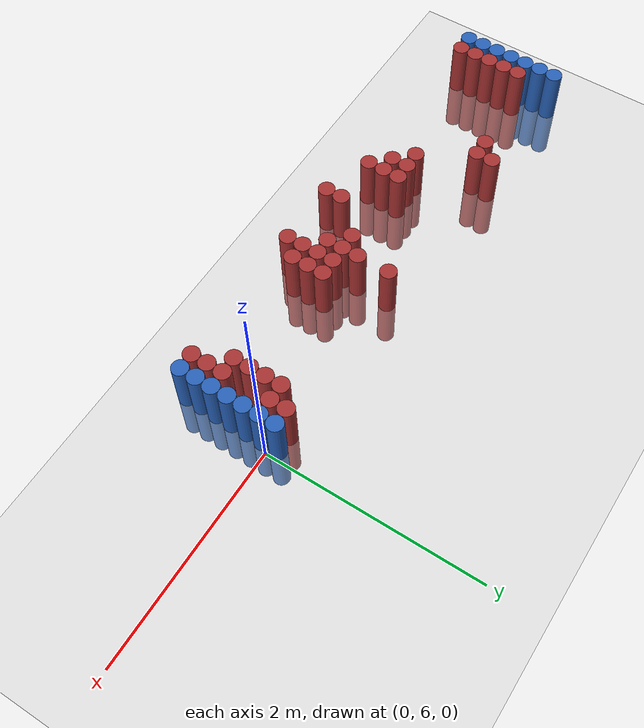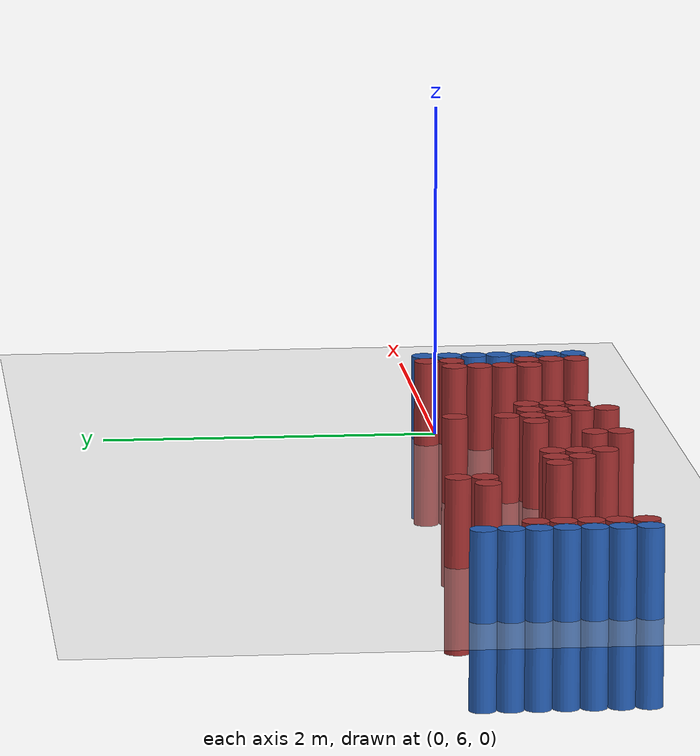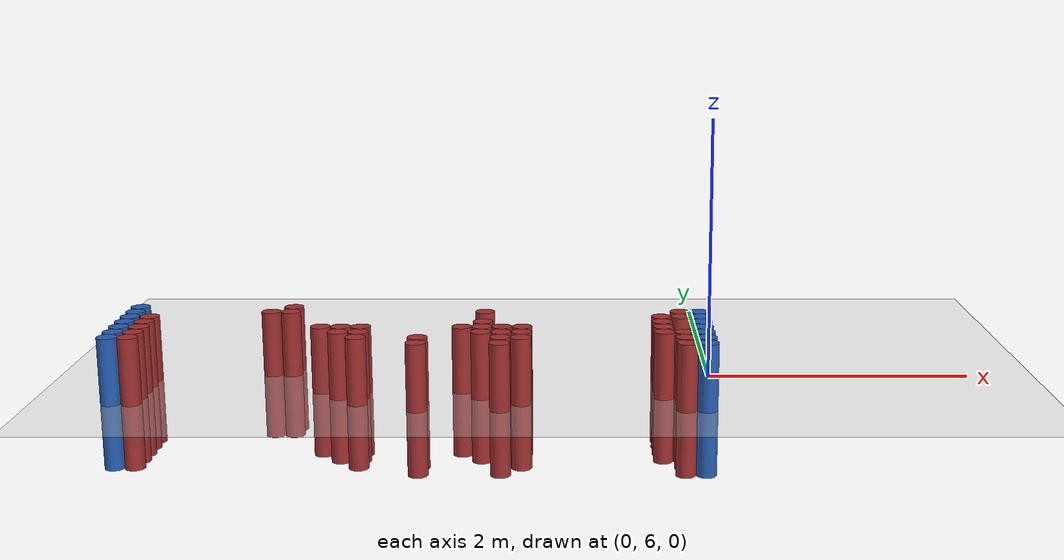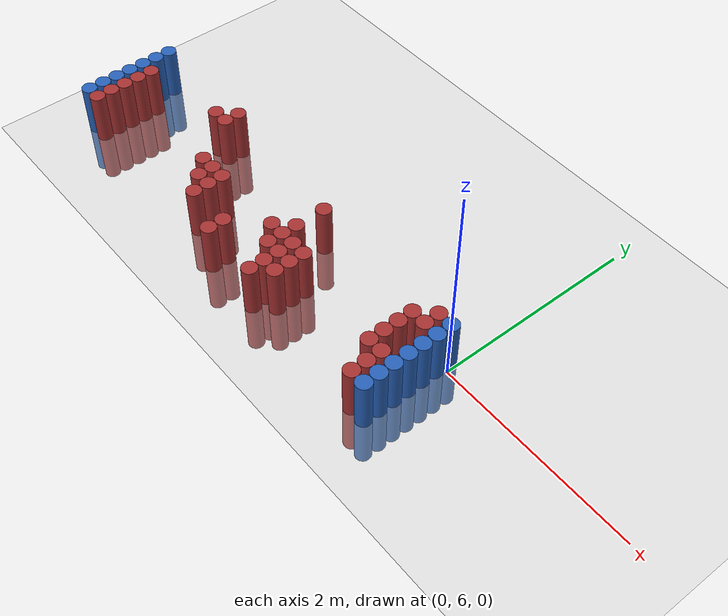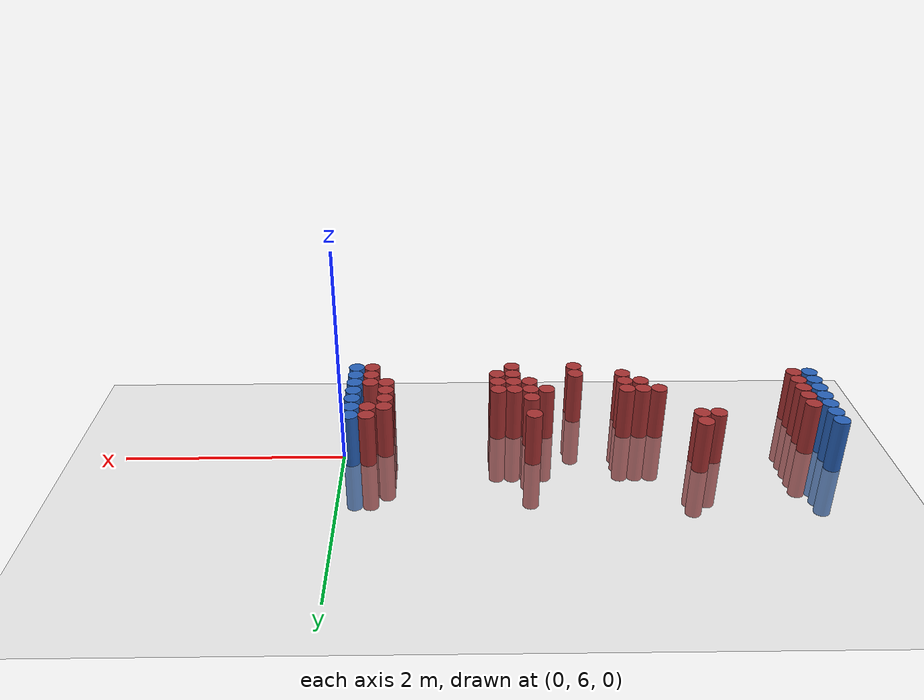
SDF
<sdf version="1.6">
 <world name="default">
  <model name="ground_plane">
   <static>1</static>
   <link name="link">
    <collision name="collision">
     <geometry><plane><normal>0 0 1</normal><size>100 100</size></plane></geometry>
     <surface><friction><ode><mu>100</mu><mu2>50</mu2></ode></friction></surface>
    </collision>
    <visual name="visual">
     <cast_shadows>0</cast_shadows>
     <geometry><plane><normal>0 0 1</normal><size>100 100</size></plane></geometry>
     <material>
      <script><uri>file://media/materials/scripts/gazebo.material</uri><name>Gazebo/Grey</name></script>
     </material>
    </visual>
   </link>
  </model>
  <model name="unit_cylinder_97">
   <static>1</static>
   <pose>-4.425000 5.325000 0.000000 0.000000 0.000000 0.000000</pose>
   <link name="link">
    <inertial>
     <mass>1</mass>
     <inertia><ixx>0.145833</ixx><ixy>0</ixy><ixz>0</ixz><iyy>0.145833</iyy><iyz>0</iyz><izz>0.125</izz></inertia>
    </inertial>
    <collision name="collision">
     <geometry><cylinder><radius>0.075000</radius><length>1</length></cylinder></geometry>
    </collision>
    <visual name="visual">
     <geometry><cylinder><radius>0.075000</radius><length>1</length></cylinder></geometry>
     <material>
      <ambient>0.152000 0.379000 0.720000 1</ambient>
      <diffuse>0.152000 0.379000 0.720000 1</diffuse>
     </material>
     <material>
      <script><name>Gazebo/Grey</name><uri>file://media/materials/scripts/gazebo.material</uri></script>
     </material>
    </visual>
   </link>
  </model>
  <model name="unit_cylinder_98">
   <static>1</static>
   <pose>-4.425000 5.475000 0.000000 0.000000 0.000000 0.000000</pose>
   <link name="link">
    <inertial>
     <mass>1</mass>
     <inertia><ixx>0.145833</ixx><ixy>0</ixy><ixz>0</ixz><iyy>0.145833</iyy><iyz>0</iyz><izz>0.125</izz></inertia>
    </inertial>
    <collision name="collision">
     <geometry><cylinder><radius>0.075000</radius><length>1</length></cylinder></geometry>
    </collision>
    <visual name="visual">
     <geometry><cylinder><radius>0.075000</radius><length>1</length></cylinder></geometry>
     <material>
      <ambient>0.152000 0.379000 0.720000 1</ambient>
      <diffuse>0.152000 0.379000 0.720000 1</diffuse>
     </material>
     <material>
      <script><name>Gazebo/Grey</name><uri>file://media/materials/scripts/gazebo.material</uri></script>
     </material>
    </visual>
   </link>
  </model>
  <model name="unit_cylinder_99">
   <static>1</static>
   <pose>-4.425000 5.625000 0.000000 0.000000 0.000000 0.000000</pose>
   <link name="link">
    <inertial>
     <mass>1</mass>
     <inertia><ixx>0.145833</ixx><ixy>0</ixy><ixz>0</ixz><iyy>0.145833</iyy><iyz>0</iyz><izz>0.125</izz></inertia>
    </inertial>
    <collision name="collision">
     <geometry><cylinder><radius>0.075000</radius><length>1</length></cylinder></geometry>
    </collision>
    <visual name="visual">
     <geometry><cylinder><radius>0.075000</radius><length>1</length></cylinder></geometry>
     <material>
      <ambient>0.152000 0.379000 0.720000 1</ambient>
      <diffuse>0.152000 0.379000 0.720000 1</diffuse>
     </material>
     <material>
      <script><name>Gazebo/Grey</name><uri>file://media/materials/scripts/gazebo.material</uri></script>
     </material>
    </visual>
   </link>
  </model>
  <model name="unit_cylinder_100">
   <static>1</static>
   <pose>-4.425000 5.775000 0.000000 0.000000 0.000000 0.000000</pose>
   <link name="link">
    <inertial>
     <mass>1</mass>
     <inertia><ixx>0.145833</ixx><ixy>0</ixy><ixz>0</ixz><iyy>0.145833</iyy><iyz>0</iyz><izz>0.125</izz></inertia>
    </inertial>
    <collision name="collision">
     <geometry><cylinder><radius>0.075000</radius><length>1</length></cylinder></geometry>
    </collision>
    <visual name="visual">
     <geometry><cylinder><radius>0.075000</radius><length>1</length></cylinder></geometry>
     <material>
      <ambient>0.152000 0.379000 0.720000 1</ambient>
      <diffuse>0.152000 0.379000 0.720000 1</diffuse>
     </material>
     <material>
      <script><name>Gazebo/Grey</name><uri>file://media/materials/scripts/gazebo.material</uri></script>
     </material>
    </visual>
   </link>
  </model>
  <model name="unit_cylinder_101">
   <static>1</static>
   <pose>-4.425000 5.925000 0.000000 0.000000 0.000000 0.000000</pose>
   <link name="link">
    <inertial>
     <mass>1</mass>
     <inertia><ixx>0.145833</ixx><ixy>0</ixy><ixz>0</ixz><iyy>0.145833</iyy><iyz>0</iyz><izz>0.125</izz></inertia>
    </inertial>
    <collision name="collision">
     <geometry><cylinder><radius>0.075000</radius><length>1</length></cylinder></geometry>
    </collision>
    <visual name="visual">
     <geometry><cylinder><radius>0.075000</radius><length>1</length></cylinder></geometry>
     <material>
      <ambient>0.152000 0.379000 0.720000 1</ambient>
      <diffuse>0.152000 0.379000 0.720000 1</diffuse>
     </material>
     <material>
      <script><name>Gazebo/Grey</name><uri>file://media/materials/scripts/gazebo.material</uri></script>
     </material>
    </visual>
   </link>
  </model>
  <model name="unit_cylinder_102">
   <static>1</static>
   <pose>-4.425000 6.075000 0.000000 0.000000 0.000000 0.000000</pose>
   <link name="link">
    <inertial>
     <mass>1</mass>
     <inertia><ixx>0.145833</ixx><ixy>0</ixy><ixz>0</ixz><iyy>0.145833</iyy><iyz>0</iyz><izz>0.125</izz></inertia>
    </inertial>
    <collision name="collision">
     <geometry><cylinder><radius>0.075000</radius><length>1</length></cylinder></geometry>
    </collision>
    <visual name="visual">
     <geometry><cylinder><radius>0.075000</radius><length>1</length></cylinder></geometry>
     <material>
      <ambient>0.152000 0.379000 0.720000 1</ambient>
      <diffuse>0.152000 0.379000 0.720000 1</diffuse>
     </material>
     <material>
      <script><name>Gazebo/Grey</name><uri>file://media/materials/scripts/gazebo.material</uri></script>
     </material>
    </visual>
   </link>
  </model>
  <model name="unit_cylinder_103">
   <static>1</static>
   <pose>-4.425000 6.225000 0.000000 0.000000 0.000000 0.000000</pose>
   <link name="link">
    <inertial>
     <mass>1</mass>
     <inertia><ixx>0.145833</ixx><ixy>0</ixy><ixz>0</ixz><iyy>0.145833</iyy><iyz>0</iyz><izz>0.125</izz></inertia>
    </inertial>
    <collision name="collision">
     <geometry><cylinder><radius>0.075000</radius><length>1</length></cylinder></geometry>
    </collision>
    <visual name="visual">
     <geometry><cylinder><radius>0.075000</radius><length>1</length></cylinder></geometry>
     <material>
      <ambient>0.152000 0.379000 0.720000 1</ambient>
      <diffuse>0.152000 0.379000 0.720000 1</diffuse>
     </material>
     <material>
      <script><name>Gazebo/Grey</name><uri>file://media/materials/scripts/gazebo.material</uri></script>
     </material>
    </visual>
   </link>
  </model>
  <model name="unit_cylinder_127">
   <static>1</static>
   <pose>-4.275000 5.325000 0.000000 0.000000 0.000000 0.000000</pose>
   <link name="link">
    <inertial>
     <mass>1</mass>
     <inertia><ixx>0.145833</ixx><ixy>0</ixy><ixz>0</ixz><iyy>0.145833</iyy><iyz>0</iyz><izz>0.125</izz></inertia>
    </inertial>
    <collision name="collision">
     <geometry><cylinder><radius>0.075000</radius><length>1</length></cylinder></geometry>
    </collision>
    <visual name="visual">
     <geometry><cylinder><radius>0.075000</radius><length>1</length></cylinder></geometry>
     <material>
      <ambient>0.648000 0.192000 0.192000 1</ambient>
      <diffuse>0.648000 0.192000 0.192000 1</diffuse>
     </material>
     <material>
      <script><name>Gazebo/Grey</name><uri>file://media/materials/scripts/gazebo.material</uri></script>
     </material>
    </visual>
   </link>
  </model>
  <model name="unit_cylinder_128">
   <static>1</static>
   <pose>-4.275000 5.475000 0.000000 0.000000 0.000000 0.000000</pose>
   <link name="link">
    <inertial>
     <mass>1</mass>
     <inertia><ixx>0.145833</ixx><ixy>0</ixy><ixz>0</ixz><iyy>0.145833</iyy><iyz>0</iyz><izz>0.125</izz></inertia>
    </inertial>
    <collision name="collision">
     <geometry><cylinder><radius>0.075000</radius><length>1</length></cylinder></geometry>
    </collision>
    <visual name="visual">
     <geometry><cylinder><radius>0.075000</radius><length>1</length></cylinder></geometry>
     <material>
      <ambient>0.648000 0.192000 0.192000 1</ambient>
      <diffuse>0.648000 0.192000 0.192000 1</diffuse>
     </material>
     <material>
      <script><name>Gazebo/Grey</name><uri>file://media/materials/scripts/gazebo.material</uri></script>
     </material>
    </visual>
   </link>
  </model>
  <model name="unit_cylinder_129">
   <static>1</static>
   <pose>-4.275000 5.625000 0.000000 0.000000 0.000000 0.000000</pose>
   <link name="link">
    <inertial>
     <mass>1</mass>
     <inertia><ixx>0.145833</ixx><ixy>0</ixy><ixz>0</ixz><iyy>0.145833</iyy><iyz>0</iyz><izz>0.125</izz></inertia>
    </inertial>
    <collision name="collision">
     <geometry><cylinder><radius>0.075000</radius><length>1</length></cylinder></geometry>
    </collision>
    <visual name="visual">
     <geometry><cylinder><radius>0.075000</radius><length>1</length></cylinder></geometry>
     <material>
      <ambient>0.648000 0.192000 0.192000 1</ambient>
      <diffuse>0.648000 0.192000 0.192000 1</diffuse>
     </material>
     <material>
      <script><name>Gazebo/Grey</name><uri>file://media/materials/scripts/gazebo.material</uri></script>
     </material>
    </visual>
   </link>
  </model>
  <model name="unit_cylinder_130">
   <static>1</static>
   <pose>-4.275000 5.775000 0.000000 0.000000 0.000000 0.000000</pose>
   <link name="link">
    <inertial>
     <mass>1</mass>
     <inertia><ixx>0.145833</ixx><ixy>0</ixy><ixz>0</ixz><iyy>0.145833</iyy><iyz>0</iyz><izz>0.125</izz></inertia>
    </inertial>
    <collision name="collision">
     <geometry><cylinder><radius>0.075000</radius><length>1</length></cylinder></geometry>
    </collision>
    <visual name="visual">
     <geometry><cylinder><radius>0.075000</radius><length>1</length></cylinder></geometry>
     <material>
      <ambient>0.648000 0.192000 0.192000 1</ambient>
      <diffuse>0.648000 0.192000 0.192000 1</diffuse>
     </material>
     <material>
      <script><name>Gazebo/Grey</name><uri>file://media/materials/scripts/gazebo.material</uri></script>
     </material>
    </visual>
   </link>
  </model>
  <model name="unit_cylinder_131">
   <static>1</static>
   <pose>-4.275000 5.925000 0.000000 0.000000 0.000000 0.000000</pose>
   <link name="link">
    <inertial>
     <mass>1</mass>
     <inertia><ixx>0.145833</ixx><ixy>0</ixy><ixz>0</ixz><iyy>0.145833</iyy><iyz>0</iyz><izz>0.125</izz></inertia>
    </inertial>
    <collision name="collision">
     <geometry><cylinder><radius>0.075000</radius><length>1</length></cylinder></geometry>
    </collision>
    <visual name="visual">
     <geometry><cylinder><radius>0.075000</radius><length>1</length></cylinder></geometry>
     <material>
      <ambient>0.648000 0.192000 0.192000 1</ambient>
      <diffuse>0.648000 0.192000 0.192000 1</diffuse>
     </material>
     <material>
      <script><name>Gazebo/Grey</name><uri>file://media/materials/scripts/gazebo.material</uri></script>
     </material>
    </visual>
   </link>
  </model>
  <model name="unit_cylinder_160">
   <static>1</static>
   <pose>-3.375000 6.075000 0.000000 0.000000 0.000000 0.000000</pose>
   <link name="link">
    <inertial>
     <mass>1</mass>
     <inertia><ixx>0.145833</ixx><ixy>0</ixy><ixz>0</ixz><iyy>0.145833</iyy><iyz>0</iyz><izz>0.125</izz></inertia>
    </inertial>
    <collision name="collision">
     <geometry><cylinder><radius>0.075000</radius><length>1</length></cylinder></geometry>
    </collision>
    <visual name="visual">
     <geometry><cylinder><radius>0.075000</radius><length>1</length></cylinder></geometry>
     <material>
      <ambient>0.648000 0.192000 0.192000 1</ambient>
      <diffuse>0.648000 0.192000 0.192000 1</diffuse>
     </material>
     <material>
      <script><name>Gazebo/Grey</name><uri>file://media/materials/scripts/gazebo.material</uri></script>
     </material>
    </visual>
   </link>
  </model>
  <model name="unit_cylinder_162">
   <static>1</static>
   <pose>-3.225000 6.075000 0.000000 0.000000 0.000000 0.000000</pose>
   <link name="link">
    <inertial>
     <mass>1</mass>
     <inertia><ixx>0.145833</ixx><ixy>0</ixy><ixz>0</ixz><iyy>0.145833</iyy><iyz>0</iyz><izz>0.125</izz></inertia>
    </inertial>
    <collision name="collision">
     <geometry><cylinder><radius>0.075000</radius><length>1</length></cylinder></geometry>
    </collision>
    <visual name="visual">
     <geometry><cylinder><radius>0.075000</radius><length>1</length></cylinder></geometry>
     <material>
      <ambient>0.648000 0.192000 0.192000 1</ambient>
      <diffuse>0.648000 0.192000 0.192000 1</diffuse>
     </material>
     <material>
      <script><name>Gazebo/Grey</name><uri>file://media/materials/scripts/gazebo.material</uri></script>
     </material>
    </visual>
   </link>
  </model>
  <model name="unit_cylinder_163">
   <static>1</static>
   <pose>-3.225000 6.225000 0.000000 0.000000 0.000000 0.000000</pose>
   <link name="link">
    <inertial>
     <mass>1</mass>
     <inertia><ixx>0.145833</ixx><ixy>0</ixy><ixz>0</ixz><iyy>0.145833</iyy><iyz>0</iyz><izz>0.125</izz></inertia>
    </inertial>
    <collision name="collision">
     <geometry><cylinder><radius>0.075000</radius><length>1</length></cylinder></geometry>
    </collision>
    <visual name="visual">
     <geometry><cylinder><radius>0.075000</radius><length>1</length></cylinder></geometry>
     <material>
      <ambient>0.648000 0.192000 0.192000 1</ambient>
      <diffuse>0.648000 0.192000 0.192000 1</diffuse>
     </material>
     <material>
      <script><name>Gazebo/Grey</name><uri>file://media/materials/scripts/gazebo.material</uri></script>
     </material>
    </visual>
   </link>
  </model>
  <model name="unit_cylinder_172">
   <static>1</static>
   <pose>-2.925000 5.625000 0.000000 0.000000 0.000000 0.000000</pose>
   <link name="link">
    <inertial>
     <mass>1</mass>
     <inertia><ixx>0.145833</ixx><ixy>0</ixy><ixz>0</ixz><iyy>0.145833</iyy><iyz>0</iyz><izz>0.125</izz></inertia>
    </inertial>
    <collision name="collision">
     <geometry><cylinder><radius>0.075000</radius><length>1</length></cylinder></geometry>
    </collision>
    <visual name="visual">
     <geometry><cylinder><radius>0.075000</radius><length>1</length></cylinder></geometry>
     <material>
      <ambient>0.648000 0.192000 0.192000 1</ambient>
      <diffuse>0.648000 0.192000 0.192000 1</diffuse>
     </material>
     <material>
      <script><name>Gazebo/Grey</name><uri>file://media/materials/scripts/gazebo.material</uri></script>
     </material>
    </visual>
   </link>
  </model>
  <model name="unit_cylinder_181">
   <static>1</static>
   <pose>-2.775000 5.475000 0.000000 0.000000 0.000000 0.000000</pose>
   <link name="link">
    <inertial>
     <mass>1</mass>
     <inertia><ixx>0.145833</ixx><ixy>0</ixy><ixz>0</ixz><iyy>0.145833</iyy><iyz>0</iyz><izz>0.125</izz></inertia>
    </inertial>
    <collision name="collision">
     <geometry><cylinder><radius>0.075000</radius><length>1</length></cylinder></geometry>
    </collision>
    <visual name="visual">
     <geometry><cylinder><radius>0.075000</radius><length>1</length></cylinder></geometry>
     <material>
      <ambient>0.648000 0.192000 0.192000 1</ambient>
      <diffuse>0.648000 0.192000 0.192000 1</diffuse>
     </material>
     <material>
      <script><name>Gazebo/Grey</name><uri>file://media/materials/scripts/gazebo.material</uri></script>
     </material>
    </visual>
   </link>
  </model>
  <model name="unit_cylinder_182">
   <static>1</static>
   <pose>-2.775000 5.625000 0.000000 0.000000 0.000000 0.000000</pose>
   <link name="link">
    <inertial>
     <mass>1</mass>
     <inertia><ixx>0.145833</ixx><ixy>0</ixy><ixz>0</ixz><iyy>0.145833</iyy><iyz>0</iyz><izz>0.125</izz></inertia>
    </inertial>
    <collision name="collision">
     <geometry><cylinder><radius>0.075000</radius><length>1</length></cylinder></geometry>
    </collision>
    <visual name="visual">
     <geometry><cylinder><radius>0.075000</radius><length>1</length></cylinder></geometry>
     <material>
      <ambient>0.648000 0.192000 0.192000 1</ambient>
      <diffuse>0.648000 0.192000 0.192000 1</diffuse>
     </material>
     <material>
      <script><name>Gazebo/Grey</name><uri>file://media/materials/scripts/gazebo.material</uri></script>
     </material>
    </visual>
   </link>
  </model>
  <model name="unit_cylinder_190">
   <static>1</static>
   <pose>-2.625000 5.325000 0.000000 0.000000 0.000000 0.000000</pose>
   <link name="link">
    <inertial>
     <mass>1</mass>
     <inertia><ixx>0.145833</ixx><ixy>0</ixy><ixz>0</ixz><iyy>0.145833</iyy><iyz>0</iyz><izz>0.125</izz></inertia>
    </inertial>
    <collision name="collision">
     <geometry><cylinder><radius>0.075000</radius><length>1</length></cylinder></geometry>
    </collision>
    <visual name="visual">
     <geometry><cylinder><radius>0.075000</radius><length>1</length></cylinder></geometry>
     <material>
      <ambient>0.648000 0.192000 0.192000 1</ambient>
      <diffuse>0.648000 0.192000 0.192000 1</diffuse>
     </material>
     <material>
      <script><name>Gazebo/Grey</name><uri>file://media/materials/scripts/gazebo.material</uri></script>
     </material>
    </visual>
   </link>
  </model>
  <model name="unit_cylinder_191">
   <static>1</static>
   <pose>-2.625000 5.475000 0.000000 0.000000 0.000000 0.000000</pose>
   <link name="link">
    <inertial>
     <mass>1</mass>
     <inertia><ixx>0.145833</ixx><ixy>0</ixy><ixz>0</ixz><iyy>0.145833</iyy><iyz>0</iyz><izz>0.125</izz></inertia>
    </inertial>
    <collision name="collision">
     <geometry><cylinder><radius>0.075000</radius><length>1</length></cylinder></geometry>
    </collision>
    <visual name="visual">
     <geometry><cylinder><radius>0.075000</radius><length>1</length></cylinder></geometry>
     <material>
      <ambient>0.648000 0.192000 0.192000 1</ambient>
      <diffuse>0.648000 0.192000 0.192000 1</diffuse>
     </material>
     <material>
      <script><name>Gazebo/Grey</name><uri>file://media/materials/scripts/gazebo.material</uri></script>
     </material>
    </visual>
   </link>
  </model>
  <model name="unit_cylinder_192">
   <static>1</static>
   <pose>-2.625000 5.625000 0.000000 0.000000 0.000000 0.000000</pose>
   <link name="link">
    <inertial>
     <mass>1</mass>
     <inertia><ixx>0.145833</ixx><ixy>0</ixy><ixz>0</ixz><iyy>0.145833</iyy><iyz>0</iyz><izz>0.125</izz></inertia>
    </inertial>
    <collision name="collision">
     <geometry><cylinder><radius>0.075000</radius><length>1</length></cylinder></geometry>
    </collision>
    <visual name="visual">
     <geometry><cylinder><radius>0.075000</radius><length>1</length></cylinder></geometry>
     <material>
      <ambient>0.648000 0.192000 0.192000 1</ambient>
      <diffuse>0.648000 0.192000 0.192000 1</diffuse>
     </material>
     <material>
      <script><name>Gazebo/Grey</name><uri>file://media/materials/scripts/gazebo.material</uri></script>
     </material>
    </visual>
   </link>
  </model>
  <model name="unit_cylinder_215">
   <static>1</static>
   <pose>-2.175000 5.175000 0.000000 0.000000 0.000000 0.000000</pose>
   <link name="link">
    <inertial>
     <mass>1</mass>
     <inertia><ixx>0.145833</ixx><ixy>0</ixy><ixz>0</ixz><iyy>0.145833</iyy><iyz>0</iyz><izz>0.125</izz></inertia>
    </inertial>
    <collision name="collision">
     <geometry><cylinder><radius>0.075000</radius><length>1</length></cylinder></geometry>
    </collision>
    <visual name="visual">
     <geometry><cylinder><radius>0.075000</radius><length>1</length></cylinder></geometry>
     <material>
      <ambient>0.648000 0.192000 0.192000 1</ambient>
      <diffuse>0.648000 0.192000 0.192000 1</diffuse>
     </material>
     <material>
      <script><name>Gazebo/Grey</name><uri>file://media/materials/scripts/gazebo.material</uri></script>
     </material>
    </visual>
   </link>
  </model>
  <model name="unit_cylinder_216">
   <static>1</static>
   <pose>-2.175000 5.325000 0.000000 0.000000 0.000000 0.000000</pose>
   <link name="link">
    <inertial>
     <mass>1</mass>
     <inertia><ixx>0.145833</ixx><ixy>0</ixy><ixz>0</ixz><iyy>0.145833</iyy><iyz>0</iyz><izz>0.125</izz></inertia>
    </inertial>
    <collision name="collision">
     <geometry><cylinder><radius>0.075000</radius><length>1</length></cylinder></geometry>
    </collision>
    <visual name="visual">
     <geometry><cylinder><radius>0.075000</radius><length>1</length></cylinder></geometry>
     <material>
      <ambient>0.648000 0.192000 0.192000 1</ambient>
      <diffuse>0.648000 0.192000 0.192000 1</diffuse>
     </material>
     <material>
      <script><name>Gazebo/Grey</name><uri>file://media/materials/scripts/gazebo.material</uri></script>
     </material>
    </visual>
   </link>
  </model>
  <model name="unit_cylinder_226">
   <static>1</static>
   <pose>-1.875000 5.625000 0.000000 0.000000 0.000000 0.000000</pose>
   <link name="link">
    <inertial>
     <mass>1</mass>
     <inertia><ixx>0.145833</ixx><ixy>0</ixy><ixz>0</ixz><iyy>0.145833</iyy><iyz>0</iyz><izz>0.125</izz></inertia>
    </inertial>
    <collision name="collision">
     <geometry><cylinder><radius>0.075000</radius><length>1</length></cylinder></geometry>
    </collision>
    <visual name="visual">
     <geometry><cylinder><radius>0.075000</radius><length>1</length></cylinder></geometry>
     <material>
      <ambient>0.648000 0.192000 0.192000 1</ambient>
      <diffuse>0.648000 0.192000 0.192000 1</diffuse>
     </material>
     <material>
      <script><name>Gazebo/Grey</name><uri>file://media/materials/scripts/gazebo.material</uri></script>
     </material>
    </visual>
   </link>
  </model>
  <model name="unit_cylinder_233">
   <static>1</static>
   <pose>-1.725000 5.475000 0.000000 0.000000 0.000000 0.000000</pose>
   <link name="link">
    <inertial>
     <mass>1</mass>
     <inertia><ixx>0.145833</ixx><ixy>0</ixy><ixz>0</ixz><iyy>0.145833</iyy><iyz>0</iyz><izz>0.125</izz></inertia>
    </inertial>
    <collision name="collision">
     <geometry><cylinder><radius>0.075000</radius><length>1</length></cylinder></geometry>
    </collision>
    <visual name="visual">
     <geometry><cylinder><radius>0.075000</radius><length>1</length></cylinder></geometry>
     <material>
      <ambient>0.648000 0.192000 0.192000 1</ambient>
      <diffuse>0.648000 0.192000 0.192000 1</diffuse>
     </material>
     <material>
      <script><name>Gazebo/Grey</name><uri>file://media/materials/scripts/gazebo.material</uri></script>
     </material>
    </visual>
   </link>
  </model>
  <model name="unit_cylinder_234">
   <static>1</static>
   <pose>-1.725000 5.625000 0.000000 0.000000 0.000000 0.000000</pose>
   <link name="link">
    <inertial>
     <mass>1</mass>
     <inertia><ixx>0.145833</ixx><ixy>0</ixy><ixz>0</ixz><iyy>0.145833</iyy><iyz>0</iyz><izz>0.125</izz></inertia>
    </inertial>
    <collision name="collision">
     <geometry><cylinder><radius>0.075000</radius><length>1</length></cylinder></geometry>
    </collision>
    <visual name="visual">
     <geometry><cylinder><radius>0.075000</radius><length>1</length></cylinder></geometry>
     <material>
      <ambient>0.648000 0.192000 0.192000 1</ambient>
      <diffuse>0.648000 0.192000 0.192000 1</diffuse>
     </material>
     <material>
      <script><name>Gazebo/Grey</name><uri>file://media/materials/scripts/gazebo.material</uri></script>
     </material>
    </visual>
   </link>
  </model>
  <model name="unit_cylinder_235">
   <static>1</static>
   <pose>-1.725000 5.775000 0.000000 0.000000 0.000000 0.000000</pose>
   <link name="link">
    <inertial>
     <mass>1</mass>
     <inertia><ixx>0.145833</ixx><ixy>0</ixy><ixz>0</ixz><iyy>0.145833</iyy><iyz>0</iyz><izz>0.125</izz></inertia>
    </inertial>
    <collision name="collision">
     <geometry><cylinder><radius>0.075000</radius><length>1</length></cylinder></geometry>
    </collision>
    <visual name="visual">
     <geometry><cylinder><radius>0.075000</radius><length>1</length></cylinder></geometry>
     <material>
      <ambient>0.648000 0.192000 0.192000 1</ambient>
      <diffuse>0.648000 0.192000 0.192000 1</diffuse>
     </material>
     <material>
      <script><name>Gazebo/Grey</name><uri>file://media/materials/scripts/gazebo.material</uri></script>
     </material>
    </visual>
   </link>
  </model>
  <model name="unit_cylinder_236">
   <static>1</static>
   <pose>-1.725000 6.075000 0.000000 0.000000 0.000000 0.000000</pose>
   <link name="link">
    <inertial>
     <mass>1</mass>
     <inertia><ixx>0.145833</ixx><ixy>0</ixy><ixz>0</ixz><iyy>0.145833</iyy><iyz>0</iyz><izz>0.125</izz></inertia>
    </inertial>
    <collision name="collision">
     <geometry><cylinder><radius>0.075000</radius><length>1</length></cylinder></geometry>
    </collision>
    <visual name="visual">
     <geometry><cylinder><radius>0.075000</radius><length>1</length></cylinder></geometry>
     <material>
      <ambient>0.648000 0.192000 0.192000 1</ambient>
      <diffuse>0.648000 0.192000 0.192000 1</diffuse>
     </material>
     <material>
      <script><name>Gazebo/Grey</name><uri>file://media/materials/scripts/gazebo.material</uri></script>
     </material>
    </visual>
   </link>
  </model>
  <model name="unit_cylinder_242">
   <static>1</static>
   <pose>-1.575000 5.175000 0.000000 0.000000 0.000000 0.000000</pose>
   <link name="link">
    <inertial>
     <mass>1</mass>
     <inertia><ixx>0.145833</ixx><ixy>0</ixy><ixz>0</ixz><iyy>0.145833</iyy><iyz>0</iyz><izz>0.125</izz></inertia>
    </inertial>
    <collision name="collision">
     <geometry><cylinder><radius>0.075000</radius><length>1</length></cylinder></geometry>
    </collision>
    <visual name="visual">
     <geometry><cylinder><radius>0.075000</radius><length>1</length></cylinder></geometry>
     <material>
      <ambient>0.648000 0.192000 0.192000 1</ambient>
      <diffuse>0.648000 0.192000 0.192000 1</diffuse>
     </material>
     <material>
      <script><name>Gazebo/Grey</name><uri>file://media/materials/scripts/gazebo.material</uri></script>
     </material>
    </visual>
   </link>
  </model>
  <model name="unit_cylinder_243">
   <static>1</static>
   <pose>-1.575000 5.325000 0.000000 0.000000 0.000000 0.000000</pose>
   <link name="link">
    <inertial>
     <mass>1</mass>
     <inertia><ixx>0.145833</ixx><ixy>0</ixy><ixz>0</ixz><iyy>0.145833</iyy><iyz>0</iyz><izz>0.125</izz></inertia>
    </inertial>
    <collision name="collision">
     <geometry><cylinder><radius>0.075000</radius><length>1</length></cylinder></geometry>
    </collision>
    <visual name="visual">
     <geometry><cylinder><radius>0.075000</radius><length>1</length></cylinder></geometry>
     <material>
      <ambient>0.648000 0.192000 0.192000 1</ambient>
      <diffuse>0.648000 0.192000 0.192000 1</diffuse>
     </material>
     <material>
      <script><name>Gazebo/Grey</name><uri>file://media/materials/scripts/gazebo.material</uri></script>
     </material>
    </visual>
   </link>
  </model>
  <model name="unit_cylinder_244">
   <static>1</static>
   <pose>-1.575000 5.475000 0.000000 0.000000 0.000000 0.000000</pose>
   <link name="link">
    <inertial>
     <mass>1</mass>
     <inertia><ixx>0.145833</ixx><ixy>0</ixy><ixz>0</ixz><iyy>0.145833</iyy><iyz>0</iyz><izz>0.125</izz></inertia>
    </inertial>
    <collision name="collision">
     <geometry><cylinder><radius>0.075000</radius><length>1</length></cylinder></geometry>
    </collision>
    <visual name="visual">
     <geometry><cylinder><radius>0.075000</radius><length>1</length></cylinder></geometry>
     <material>
      <ambient>0.648000 0.192000 0.192000 1</ambient>
      <diffuse>0.648000 0.192000 0.192000 1</diffuse>
     </material>
     <material>
      <script><name>Gazebo/Grey</name><uri>file://media/materials/scripts/gazebo.material</uri></script>
     </material>
    </visual>
   </link>
  </model>
  <model name="unit_cylinder_245">
   <static>1</static>
   <pose>-1.575000 5.625000 0.000000 0.000000 0.000000 0.000000</pose>
   <link name="link">
    <inertial>
     <mass>1</mass>
     <inertia><ixx>0.145833</ixx><ixy>0</ixy><ixz>0</ixz><iyy>0.145833</iyy><iyz>0</iyz><izz>0.125</izz></inertia>
    </inertial>
    <collision name="collision">
     <geometry><cylinder><radius>0.075000</radius><length>1</length></cylinder></geometry>
    </collision>
    <visual name="visual">
     <geometry><cylinder><radius>0.075000</radius><length>1</length></cylinder></geometry>
     <material>
      <ambient>0.648000 0.192000 0.192000 1</ambient>
      <diffuse>0.648000 0.192000 0.192000 1</diffuse>
     </material>
     <material>
      <script><name>Gazebo/Grey</name><uri>file://media/materials/scripts/gazebo.material</uri></script>
     </material>
    </visual>
   </link>
  </model>
  <model name="unit_cylinder_256">
   <static>1</static>
   <pose>-1.425000 5.325000 0.000000 0.000000 0.000000 0.000000</pose>
   <link name="link">
    <inertial>
     <mass>1</mass>
     <inertia><ixx>0.145833</ixx><ixy>0</ixy><ixz>0</ixz><iyy>0.145833</iyy><iyz>0</iyz><izz>0.125</izz></inertia>
    </inertial>
    <collision name="collision">
     <geometry><cylinder><radius>0.075000</radius><length>1</length></cylinder></geometry>
    </collision>
    <visual name="visual">
     <geometry><cylinder><radius>0.075000</radius><length>1</length></cylinder></geometry>
     <material>
      <ambient>0.648000 0.192000 0.192000 1</ambient>
      <diffuse>0.648000 0.192000 0.192000 1</diffuse>
     </material>
     <material>
      <script><name>Gazebo/Grey</name><uri>file://media/materials/scripts/gazebo.material</uri></script>
     </material>
    </visual>
   </link>
  </model>
  <model name="unit_cylinder_257">
   <static>1</static>
   <pose>-1.425000 5.475000 0.000000 0.000000 0.000000 0.000000</pose>
   <link name="link">
    <inertial>
     <mass>1</mass>
     <inertia><ixx>0.145833</ixx><ixy>0</ixy><ixz>0</ixz><iyy>0.145833</iyy><iyz>0</iyz><izz>0.125</izz></inertia>
    </inertial>
    <collision name="collision">
     <geometry><cylinder><radius>0.075000</radius><length>1</length></cylinder></geometry>
    </collision>
    <visual name="visual">
     <geometry><cylinder><radius>0.075000</radius><length>1</length></cylinder></geometry>
     <material>
      <ambient>0.648000 0.192000 0.192000 1</ambient>
      <diffuse>0.648000 0.192000 0.192000 1</diffuse>
     </material>
     <material>
      <script><name>Gazebo/Grey</name><uri>file://media/materials/scripts/gazebo.material</uri></script>
     </material>
    </visual>
   </link>
  </model>
  <model name="unit_cylinder_258">
   <static>1</static>
   <pose>-1.425000 5.625000 0.000000 0.000000 0.000000 0.000000</pose>
   <link name="link">
    <inertial>
     <mass>1</mass>
     <inertia><ixx>0.145833</ixx><ixy>0</ixy><ixz>0</ixz><iyy>0.145833</iyy><iyz>0</iyz><izz>0.125</izz></inertia>
    </inertial>
    <collision name="collision">
     <geometry><cylinder><radius>0.075000</radius><length>1</length></cylinder></geometry>
    </collision>
    <visual name="visual">
     <geometry><cylinder><radius>0.075000</radius><length>1</length></cylinder></geometry>
     <material>
      <ambient>0.648000 0.192000 0.192000 1</ambient>
      <diffuse>0.648000 0.192000 0.192000 1</diffuse>
     </material>
     <material>
      <script><name>Gazebo/Grey</name><uri>file://media/materials/scripts/gazebo.material</uri></script>
     </material>
    </visual>
   </link>
  </model>
  <model name="unit_cylinder_291">
   <static>1</static>
   <pose>-0.375000 5.475000 0.000000 0.000000 0.000000 0.000000</pose>
   <link name="link">
    <inertial>
     <mass>1</mass>
     <inertia><ixx>0.145833</ixx><ixy>0</ixy><ixz>0</ixz><iyy>0.145833</iyy><iyz>0</iyz><izz>0.125</izz></inertia>
    </inertial>
    <collision name="collision">
     <geometry><cylinder><radius>0.075000</radius><length>1</length></cylinder></geometry>
    </collision>
    <visual name="visual">
     <geometry><cylinder><radius>0.075000</radius><length>1</length></cylinder></geometry>
     <material>
      <ambient>0.648000 0.192000 0.192000 1</ambient>
      <diffuse>0.648000 0.192000 0.192000 1</diffuse>
     </material>
     <material>
      <script><name>Gazebo/Grey</name><uri>file://media/materials/scripts/gazebo.material</uri></script>
     </material>
    </visual>
   </link>
  </model>
  <model name="unit_cylinder_292">
   <static>1</static>
   <pose>-0.375000 5.625000 0.000000 0.000000 0.000000 0.000000</pose>
   <link name="link">
    <inertial>
     <mass>1</mass>
     <inertia><ixx>0.145833</ixx><ixy>0</ixy><ixz>0</ixz><iyy>0.145833</iyy><iyz>0</iyz><izz>0.125</izz></inertia>
    </inertial>
    <collision name="collision">
     <geometry><cylinder><radius>0.075000</radius><length>1</length></cylinder></geometry>
    </collision>
    <visual name="visual">
     <geometry><cylinder><radius>0.075000</radius><length>1</length></cylinder></geometry>
     <material>
      <ambient>0.648000 0.192000 0.192000 1</ambient>
      <diffuse>0.648000 0.192000 0.192000 1</diffuse>
     </material>
     <material>
      <script><name>Gazebo/Grey</name><uri>file://media/materials/scripts/gazebo.material</uri></script>
     </material>
    </visual>
   </link>
  </model>
  <model name="unit_cylinder_293">
   <static>1</static>
   <pose>-0.375000 5.775000 0.000000 0.000000 0.000000 0.000000</pose>
   <link name="link">
    <inertial>
     <mass>1</mass>
     <inertia><ixx>0.145833</ixx><ixy>0</ixy><ixz>0</ixz><iyy>0.145833</iyy><iyz>0</iyz><izz>0.125</izz></inertia>
    </inertial>
    <collision name="collision">
     <geometry><cylinder><radius>0.075000</radius><length>1</length></cylinder></geometry>
    </collision>
    <visual name="visual">
     <geometry><cylinder><radius>0.075000</radius><length>1</length></cylinder></geometry>
     <material>
      <ambient>0.648000 0.192000 0.192000 1</ambient>
      <diffuse>0.648000 0.192000 0.192000 1</diffuse>
     </material>
     <material>
      <script><name>Gazebo/Grey</name><uri>file://media/materials/scripts/gazebo.material</uri></script>
     </material>
    </visual>
   </link>
  </model>
  <model name="unit_cylinder_294">
   <static>1</static>
   <pose>-0.375000 5.925000 0.000000 0.000000 0.000000 0.000000</pose>
   <link name="link">
    <inertial>
     <mass>1</mass>
     <inertia><ixx>0.145833</ixx><ixy>0</ixy><ixz>0</ixz><iyy>0.145833</iyy><iyz>0</iyz><izz>0.125</izz></inertia>
    </inertial>
    <collision name="collision">
     <geometry><cylinder><radius>0.075000</radius><length>1</length></cylinder></geometry>
    </collision>
    <visual name="visual">
     <geometry><cylinder><radius>0.075000</radius><length>1</length></cylinder></geometry>
     <material>
      <ambient>0.648000 0.192000 0.192000 1</ambient>
      <diffuse>0.648000 0.192000 0.192000 1</diffuse>
     </material>
     <material>
      <script><name>Gazebo/Grey</name><uri>file://media/materials/scripts/gazebo.material</uri></script>
     </material>
    </visual>
   </link>
  </model>
  <model name="unit_cylinder_302">
   <static>1</static>
   <pose>-0.225000 5.175000 0.000000 0.000000 0.000000 0.000000</pose>
   <link name="link">
    <inertial>
     <mass>1</mass>
     <inertia><ixx>0.145833</ixx><ixy>0</ixy><ixz>0</ixz><iyy>0.145833</iyy><iyz>0</iyz><izz>0.125</izz></inertia>
    </inertial>
    <collision name="collision">
     <geometry><cylinder><radius>0.075000</radius><length>1</length></cylinder></geometry>
    </collision>
    <visual name="visual">
     <geometry><cylinder><radius>0.075000</radius><length>1</length></cylinder></geometry>
     <material>
      <ambient>0.648000 0.192000 0.192000 1</ambient>
      <diffuse>0.648000 0.192000 0.192000 1</diffuse>
     </material>
     <material>
      <script><name>Gazebo/Grey</name><uri>file://media/materials/scripts/gazebo.material</uri></script>
     </material>
    </visual>
   </link>
  </model>
  <model name="unit_cylinder_303">
   <static>1</static>
   <pose>-0.225000 5.325000 0.000000 0.000000 0.000000 0.000000</pose>
   <link name="link">
    <inertial>
     <mass>1</mass>
     <inertia><ixx>0.145833</ixx><ixy>0</ixy><ixz>0</ixz><iyy>0.145833</iyy><iyz>0</iyz><izz>0.125</izz></inertia>
    </inertial>
    <collision name="collision">
     <geometry><cylinder><radius>0.075000</radius><length>1</length></cylinder></geometry>
    </collision>
    <visual name="visual">
     <geometry><cylinder><radius>0.075000</radius><length>1</length></cylinder></geometry>
     <material>
      <ambient>0.648000 0.192000 0.192000 1</ambient>
      <diffuse>0.648000 0.192000 0.192000 1</diffuse>
     </material>
     <material>
      <script><name>Gazebo/Grey</name><uri>file://media/materials/scripts/gazebo.material</uri></script>
     </material>
    </visual>
   </link>
  </model>
  <model name="unit_cylinder_304">
   <static>1</static>
   <pose>-0.225000 5.475000 0.000000 0.000000 0.000000 0.000000</pose>
   <link name="link">
    <inertial>
     <mass>1</mass>
     <inertia><ixx>0.145833</ixx><ixy>0</ixy><ixz>0</ixz><iyy>0.145833</iyy><iyz>0</iyz><izz>0.125</izz></inertia>
    </inertial>
    <collision name="collision">
     <geometry><cylinder><radius>0.075000</radius><length>1</length></cylinder></geometry>
    </collision>
    <visual name="visual">
     <geometry><cylinder><radius>0.075000</radius><length>1</length></cylinder></geometry>
     <material>
      <ambient>0.648000 0.192000 0.192000 1</ambient>
      <diffuse>0.648000 0.192000 0.192000 1</diffuse>
     </material>
     <material>
      <script><name>Gazebo/Grey</name><uri>file://media/materials/scripts/gazebo.material</uri></script>
     </material>
    </visual>
   </link>
  </model>
  <model name="unit_cylinder_305">
   <static>1</static>
   <pose>-0.225000 5.925000 0.000000 0.000000 0.000000 0.000000</pose>
   <link name="link">
    <inertial>
     <mass>1</mass>
     <inertia><ixx>0.145833</ixx><ixy>0</ixy><ixz>0</ixz><iyy>0.145833</iyy><iyz>0</iyz><izz>0.125</izz></inertia>
    </inertial>
    <collision name="collision">
     <geometry><cylinder><radius>0.075000</radius><length>1</length></cylinder></geometry>
    </collision>
    <visual name="visual">
     <geometry><cylinder><radius>0.075000</radius><length>1</length></cylinder></geometry>
     <material>
      <ambient>0.648000 0.192000 0.192000 1</ambient>
      <diffuse>0.648000 0.192000 0.192000 1</diffuse>
     </material>
     <material>
      <script><name>Gazebo/Grey</name><uri>file://media/materials/scripts/gazebo.material</uri></script>
     </material>
    </visual>
   </link>
  </model>
  <model name="unit_cylinder_306">
   <static>1</static>
   <pose>-0.225000 6.075000 0.000000 0.000000 0.000000 0.000000</pose>
   <link name="link">
    <inertial>
     <mass>1</mass>
     <inertia><ixx>0.145833</ixx><ixy>0</ixy><ixz>0</ixz><iyy>0.145833</iyy><iyz>0</iyz><izz>0.125</izz></inertia>
    </inertial>
    <collision name="collision">
     <geometry><cylinder><radius>0.075000</radius><length>1</length></cylinder></geometry>
    </collision>
    <visual name="visual">
     <geometry><cylinder><radius>0.075000</radius><length>1</length></cylinder></geometry>
     <material>
      <ambient>0.648000 0.192000 0.192000 1</ambient>
      <diffuse>0.648000 0.192000 0.192000 1</diffuse>
     </material>
     <material>
      <script><name>Gazebo/Grey</name><uri>file://media/materials/scripts/gazebo.material</uri></script>
     </material>
    </visual>
   </link>
  </model>
  <model name="unit_cylinder_325">
   <static>1</static>
   <pose>-0.075000 5.175000 0.000000 0.000000 0.000000 0.000000</pose>
   <link name="link">
    <inertial>
     <mass>1</mass>
     <inertia><ixx>0.145833</ixx><ixy>0</ixy><ixz>0</ixz><iyy>0.145833</iyy><iyz>0</iyz><izz>0.125</izz></inertia>
    </inertial>
    <collision name="collision">
     <geometry><cylinder><radius>0.075000</radius><length>1</length></cylinder></geometry>
    </collision>
    <visual name="visual">
     <geometry><cylinder><radius>0.075000</radius><length>1</length></cylinder></geometry>
     <material>
      <ambient>0.152000 0.379000 0.720000 1</ambient>
      <diffuse>0.152000 0.379000 0.720000 1</diffuse>
     </material>
     <material>
      <script><name>Gazebo/Grey</name><uri>file://media/materials/scripts/gazebo.material</uri></script>
     </material>
    </visual>
   </link>
  </model>
  <model name="unit_cylinder_326">
   <static>1</static>
   <pose>-0.075000 5.325000 0.000000 0.000000 0.000000 0.000000</pose>
   <link name="link">
    <inertial>
     <mass>1</mass>
     <inertia><ixx>0.145833</ixx><ixy>0</ixy><ixz>0</ixz><iyy>0.145833</iyy><iyz>0</iyz><izz>0.125</izz></inertia>
    </inertial>
    <collision name="collision">
     <geometry><cylinder><radius>0.075000</radius><length>1</length></cylinder></geometry>
    </collision>
    <visual name="visual">
     <geometry><cylinder><radius>0.075000</radius><length>1</length></cylinder></geometry>
     <material>
      <ambient>0.152000 0.379000 0.720000 1</ambient>
      <diffuse>0.152000 0.379000 0.720000 1</diffuse>
     </material>
     <material>
      <script><name>Gazebo/Grey</name><uri>file://media/materials/scripts/gazebo.material</uri></script>
     </material>
    </visual>
   </link>
  </model>
  <model name="unit_cylinder_327">
   <static>1</static>
   <pose>-0.075000 5.475000 0.000000 0.000000 0.000000 0.000000</pose>
   <link name="link">
    <inertial>
     <mass>1</mass>
     <inertia><ixx>0.145833</ixx><ixy>0</ixy><ixz>0</ixz><iyy>0.145833</iyy><iyz>0</iyz><izz>0.125</izz></inertia>
    </inertial>
    <collision name="collision">
     <geometry><cylinder><radius>0.075000</radius><length>1</length></cylinder></geometry>
    </collision>
    <visual name="visual">
     <geometry><cylinder><radius>0.075000</radius><length>1</length></cylinder></geometry>
     <material>
      <ambient>0.152000 0.379000 0.720000 1</ambient>
      <diffuse>0.152000 0.379000 0.720000 1</diffuse>
     </material>
     <material>
      <script><name>Gazebo/Grey</name><uri>file://media/materials/scripts/gazebo.material</uri></script>
     </material>
    </visual>
   </link>
  </model>
  <model name="unit_cylinder_328">
   <static>1</static>
   <pose>-0.075000 5.625000 0.000000 0.000000 0.000000 0.000000</pose>
   <link name="link">
    <inertial>
     <mass>1</mass>
     <inertia><ixx>0.145833</ixx><ixy>0</ixy><ixz>0</ixz><iyy>0.145833</iyy><iyz>0</iyz><izz>0.125</izz></inertia>
    </inertial>
    <collision name="collision">
     <geometry><cylinder><radius>0.075000</radius><length>1</length></cylinder></geometry>
    </collision>
    <visual name="visual">
     <geometry><cylinder><radius>0.075000</radius><length>1</length></cylinder></geometry>
     <material>
      <ambient>0.152000 0.379000 0.720000 1</ambient>
      <diffuse>0.152000 0.379000 0.720000 1</diffuse>
     </material>
     <material>
      <script><name>Gazebo/Grey</name><uri>file://media/materials/scripts/gazebo.material</uri></script>
     </material>
    </visual>
   </link>
  </model>
  <model name="unit_cylinder_329">
   <static>1</static>
   <pose>-0.075000 5.775000 0.000000 0.000000 0.000000 0.000000</pose>
   <link name="link">
    <inertial>
     <mass>1</mass>
     <inertia><ixx>0.145833</ixx><ixy>0</ixy><ixz>0</ixz><iyy>0.145833</iyy><iyz>0</iyz><izz>0.125</izz></inertia>
    </inertial>
    <collision name="collision">
     <geometry><cylinder><radius>0.075000</radius><length>1</length></cylinder></geometry>
    </collision>
    <visual name="visual">
     <geometry><cylinder><radius>0.075000</radius><length>1</length></cylinder></geometry>
     <material>
      <ambient>0.152000 0.379000 0.720000 1</ambient>
      <diffuse>0.152000 0.379000 0.720000 1</diffuse>
     </material>
     <material>
      <script><name>Gazebo/Grey</name><uri>file://media/materials/scripts/gazebo.material</uri></script>
     </material>
    </visual>
   </link>
  </model>
  <model name="unit_cylinder_330">
   <static>1</static>
   <pose>-0.075000 5.925000 0.000000 0.000000 0.000000 0.000000</pose>
   <link name="link">
    <inertial>
     <mass>1</mass>
     <inertia><ixx>0.145833</ixx><ixy>0</ixy><ixz>0</ixz><iyy>0.145833</iyy><iyz>0</iyz><izz>0.125</izz></inertia>
    </inertial>
    <collision name="collision">
     <geometry><cylinder><radius>0.075000</radius><length>1</length></cylinder></geometry>
    </collision>
    <visual name="visual">
     <geometry><cylinder><radius>0.075000</radius><length>1</length></cylinder></geometry>
     <material>
      <ambient>0.152000 0.379000 0.720000 1</ambient>
      <diffuse>0.152000 0.379000 0.720000 1</diffuse>
     </material>
     <material>
      <script><name>Gazebo/Grey</name><uri>file://media/materials/scripts/gazebo.material</uri></script>
     </material>
    </visual>
   </link>
  </model>
  <model name="unit_cylinder_331">
   <static>1</static>
   <pose>-0.075000 6.075000 0.000000 0.000000 0.000000 0.000000</pose>
   <link name="link">
    <inertial>
     <mass>1</mass>
     <inertia><ixx>0.145833</ixx><ixy>0</ixy><ixz>0</ixz><iyy>0.145833</iyy><iyz>0</iyz><izz>0.125</izz></inertia>
    </inertial>
    <collision name="collision">
     <geometry><cylinder><radius>0.075000</radius><length>1</length></cylinder></geometry>
    </collision>
    <visual name="visual">
     <geometry><cylinder><radius>0.075000</radius><length>1</length></cylinder></geometry>
     <material>
      <ambient>0.152000 0.379000 0.720000 1</ambient>
      <diffuse>0.152000 0.379000 0.720000 1</diffuse>
     </material>
     <material>
      <script><name>Gazebo/Grey</name><uri>file://media/materials/scripts/gazebo.material</uri></script>
     </material>
    </visual>
   </link>
  </model>
 </world>
</sdf>
